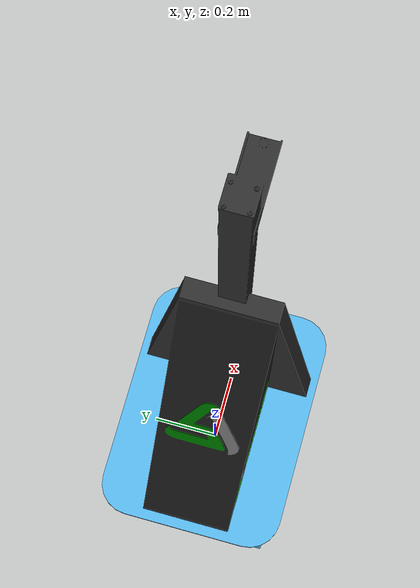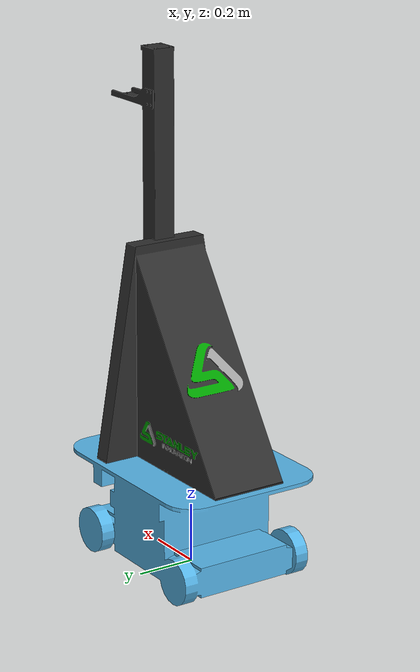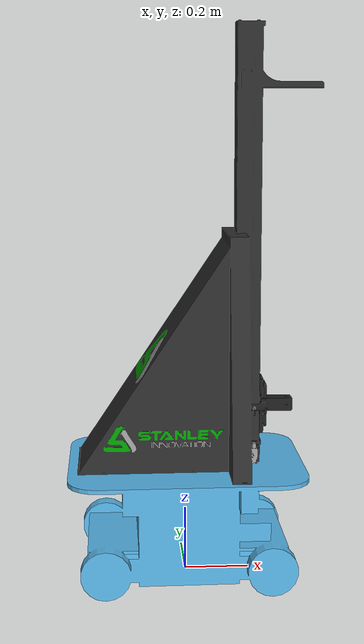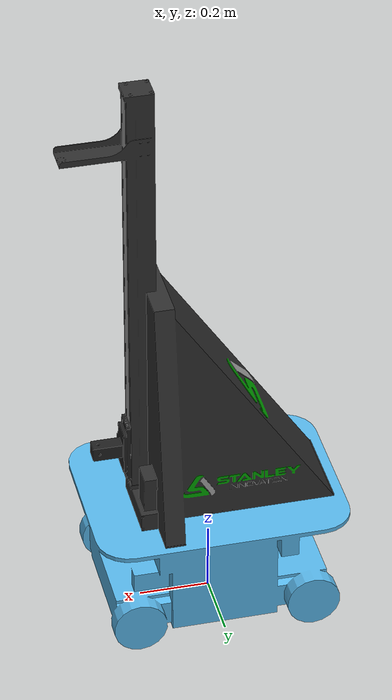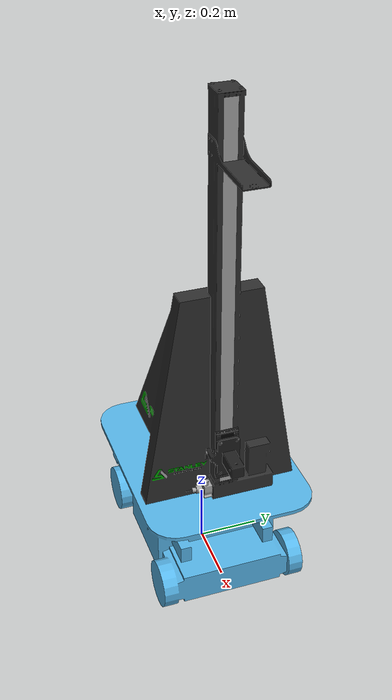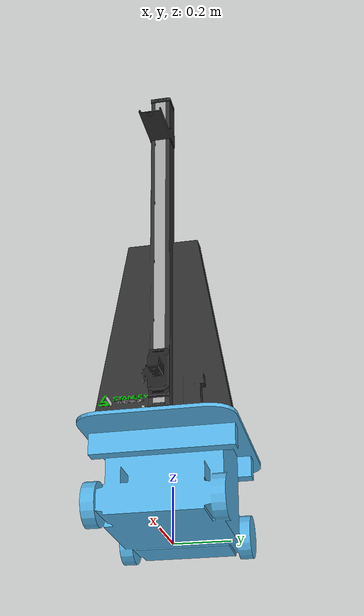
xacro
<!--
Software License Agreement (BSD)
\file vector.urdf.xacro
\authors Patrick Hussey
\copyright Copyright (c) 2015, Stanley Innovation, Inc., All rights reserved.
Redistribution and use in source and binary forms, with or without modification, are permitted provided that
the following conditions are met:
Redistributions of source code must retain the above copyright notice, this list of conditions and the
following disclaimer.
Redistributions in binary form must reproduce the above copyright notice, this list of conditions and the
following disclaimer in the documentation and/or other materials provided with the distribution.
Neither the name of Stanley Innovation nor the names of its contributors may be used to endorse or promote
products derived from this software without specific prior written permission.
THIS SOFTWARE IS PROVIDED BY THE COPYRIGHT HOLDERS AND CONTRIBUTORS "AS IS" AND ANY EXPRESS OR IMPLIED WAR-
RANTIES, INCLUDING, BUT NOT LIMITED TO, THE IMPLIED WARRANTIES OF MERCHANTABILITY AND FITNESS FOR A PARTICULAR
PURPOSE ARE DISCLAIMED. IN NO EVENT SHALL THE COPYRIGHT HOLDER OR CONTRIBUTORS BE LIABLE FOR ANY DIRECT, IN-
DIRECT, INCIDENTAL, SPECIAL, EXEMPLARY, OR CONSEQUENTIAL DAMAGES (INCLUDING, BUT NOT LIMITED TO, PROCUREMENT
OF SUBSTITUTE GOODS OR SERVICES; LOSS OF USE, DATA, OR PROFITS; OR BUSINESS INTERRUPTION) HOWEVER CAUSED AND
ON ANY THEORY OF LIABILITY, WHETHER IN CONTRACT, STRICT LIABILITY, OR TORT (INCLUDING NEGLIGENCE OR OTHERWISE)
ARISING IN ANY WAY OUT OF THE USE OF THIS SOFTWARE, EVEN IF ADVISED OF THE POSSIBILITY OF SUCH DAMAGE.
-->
<?xml version="1.0"?>
<robot name="vector" xmlns:xacro="http://ros.org/wiki/xacro">

    <!-- Included URDF/XACRO Files -->

    <xacro:include filename="$(find vector_description)/urdf/vector_components/vector_base.urdf.xacro" />
    <xacro:include filename="$(find vector_description)/urdf/linear_actuator/vector_linear_actuator.urdf.xacro" />
    <xacro:include filename="$(find vector_description)/urdf/accessories.urdf.xacro" />
    <xacro:include filename="$(find vector_description)/urdf/manipulation/jaco/jaco.urdf.xacro" />
    <xacro:include filename="$(find vector_description)/urdf/manipulation/robotiq/robotiq_85_gripper.urdf.xacro" />

    <xacro:property name="M_PI" value="3.14159"/>
    <xacro:if value="$(optenv VECTOR_USE_PLATFORM_ODOMETRY false)">
        <gazebo>
            <plugin name="gazebo_ros_control" filename="libgazebo_ros_control.so">
              <robotNamespace>/</robotNamespace>
            </plugin>
            <plugin name="object_controller" filename="libgazebo_ros_force_based_move.so">
                <commandTopic>/vector/cmd_vel</commandTopic>
                <odometryTopic>/vector/odometry/local_filtered</odometryTopic>
                <odometryFrame>odom</odometryFrame>
                <odometryRate>30.0</odometryRate>
                <robotBaseFrame>base_link</robotBaseFrame>
                <publishOdometryTf>1</publishOdometryTf>
                <yaw_velocity_p_gain>100.0</yaw_velocity_p_gain>
                <x_velocity_p_gain>10000.0</x_velocity_p_gain>
                <y_velocity_p_gain>10000.0</y_velocity_p_gain>
            </plugin>
        </gazebo>
    </xacro:if>

    <xacro:unless value="$(optenv VECTOR_USE_PLATFORM_ODOMETRY false)">
        <gazebo>
            <plugin name="gazebo_ros_control" filename="libgazebo_ros_control.so">
              <robotNamespace>/</robotNamespace>
            </plugin>
            <plugin name="object_controller" filename="libgazebo_ros_force_based_move.so">
                <commandTopic>/vector/cmd_vel</commandTopic>
                <odometryTopic>/vector/feedback/wheel_odometry</odometryTopic>
                <odometryFrame>odom</odometryFrame>
                <odometryRate>30.0</odometryRate>
                <robotBaseFrame>base_link</robotBaseFrame>
                <publishOdometryTf>0</publishOdometryTf>
                <yaw_velocity_p_gain>100.0</yaw_velocity_p_gain>
                <x_velocity_p_gain>10000.0</x_velocity_p_gain>
                <y_velocity_p_gain>10000.0</y_velocity_p_gain>
            </plugin>
        </gazebo>
    </xacro:unless>

    <xacro:vector_base name="base"/>

    <!--linear actuator-->
    <xacro:if value="$(optenv VECTOR_HAS_LINEAR_ACTUATOR true)">
        <xacro:vector_linear_actuator parent="base_chassis_link">
            <origin xyz="0.22806971 0 0.46024800" rpy="0 0 0" />
        </xacro:vector_linear_actuator>
    </xacro:if>

    <!-- Arms -->
    <xacro:if value="$(optenv VECTOR_HAS_KINOVA_ARM false)">
        <xacro:jaco_robot prefix="right_" parent="linear_actuator_link">
            <xacro:unless value="$(optenv VECTOR_HAS_TWO_KINOVA_ARMS false)">
                <origin xyz="0.06079866 -0.1319 0" rpy="${M_PI/2} 0 ${M_PI/2}"/>
            </xacro:unless>
            <xacro:if value="$(optenv VECTOR_HAS_TWO_KINOVA_ARMS false)">
                <origin xyz="0.06079866 -0.1319 0" rpy="${M_PI/2} 0 ${M_PI/2}"/>
            </xacro:if>
        </xacro:jaco_robot>

        <xacro:if value="$(optenv VECTOR_HAS_TWO_KINOVA_ARMS false)">
            <xacro:jaco_robot prefix="left_" parent="linear_actuator_link">
                <origin xyz="0.06079866 0.1319 0" rpy="${M_PI/2} 0 ${M_PI/2}"/>
            </xacro:jaco_robot>
        </xacro:if>

        <xacro:if value="$(optenv VECTOR_HAS_ROBOTIQ_GRIPPER false)">
            <xacro:robotiq_85_gripper prefix="right_" parent="right_ee_base" >
                <origin xyz="0 0 0" rpy="0 0 0"/>
            </xacro:robotiq_85_gripper>

            <xacro:if value="$(optenv VECTOR_HAS_TWO_ROBOTIQ_GRIPPERS false)">
                <xacro:robotiq_85_gripper prefix="left_" parent="left_ee_base" >
                    <origin xyz="0 0 0" rpy="0 0 0"/>
                </xacro:robotiq_85_gripper>
            </xacro:if>
        </xacro:if>
    </xacro:if>

    <!-- Setup any accessories defined in the environment -->
    <xacro:vector_accessories />

</robot>

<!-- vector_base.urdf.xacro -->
<robot name="vector_base" xmlns:xacro="http://ros.org/wiki/xacro">

    <!-- Wheel Mounting Positions and Properties-->
    <xacro:property name="wheel_radius" value="0.0762" />

	<xacro:macro name="vector_base" params="name">

        <!-- Base link is the center of the robot's chassis between the motors projected on the ground -->
        <link name="${name}_link"/>

        <gazebo reference="base_link">
            <mu1>0.0</mu1>
        </gazebo>

        <joint name="${name}_chassis_joint" type="fixed">
            <origin xyz="0 0 ${wheel_radius}" rpy="0 0 0" />
            <parent link="${name}_link" />
            <child link="${name}_chassis_link" />
        </joint>

        <link name="${name}_chassis_link">
			<inertial>
				<mass value="55.914402" />
				<origin xyz="0 0 0" />
				<inertia ixx="3.54"  ixy="0" ixz="0"
                         iyx="0"  iyy="3.71" iyz="0"
                         izx="0" izy="0" izz="2.53" />
			</inertial>
            <collision>
				<geometry>
					<mesh filename="package://vector_description/meshes/chassis_collision.STL" />
				</geometry>
			</collision>
			<visual>
				<origin xyz="0 0 0" rpy="0 0 0" />
				<geometry>
					<mesh filename="package://vector_description/meshes/vector_chassis.dae" />
				</geometry>
			</visual>
		</link>

        <gazebo reference="base_chassis_link">
            <mu1>0.0</mu1>
        </gazebo>

    </xacro:macro>

</robot>

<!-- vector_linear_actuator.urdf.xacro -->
<robot xmlns:xacro="http://ros.org/wiki/xacro" name="vector_linear_actuator">

	<xacro:macro name="vector_linear_actuator" params="parent *origin">

        <joint name="linear_actuator_joint" type="fixed">
            <xacro:insert_block name="origin" />
            <parent link="${parent}" />
            <child link="linear_actuator_fixed_link" />
        </joint>

	    <link name="linear_actuator_fixed_link">
			<visual>
				<geometry>
					<mesh filename="package://vector_description/meshes/linear_actuator/visual/linear_actuator.dae" />
				</geometry>
			</visual>
			<collision>
				<geometry>
					<mesh filename="package://vector_description/meshes/linear_actuator/collision/linear_actuator_collision.STL" />
				</geometry>
			</collision>
		    <inertial>
                <mass value="5.098044" />
                <origin xyz="0.0 0.0 0.5" rpy="0 0 0"/>
                <inertia ixx="0.02"  ixy="0.0"  ixz="1.0" iyy="-0.03"  iyz="-0.02" izz="0.0" />
		    </inertial>
		</link>

        <joint name="linear_joint" type="prismatic">
            <parent link="linear_actuator_fixed_link" />
            <child link = "linear_actuator_link" />
            <origin xyz="0 0 0" rpy="0 0 0" />
            <axis xyz="0 0 1" />
            <limit lower="0.0" upper="0.855" effort="1000" velocity="0.20"/>
            <dynamics damping="0.0" friction="0.0"/>
        </joint>

        <xacro:unless value="$(optenv VECTOR_HAS_TWO_KINOVA_ARMS false)">
            <link name="linear_actuator_link">
			    <visual>
				    <geometry>
					    <mesh filename="package://vector_description/meshes/linear_actuator/visual/linear_carraige.dae" />
				    </geometry>
			    </visual>
			    <collision>
				    <geometry>
					    <mesh filename="package://vector_description/meshes/linear_actuator/collision/linear_carraige_collision.STL" />
				    </geometry>
			    </collision>
		        <inertial>
                    <mass value="0.217" />
                    <origin xyz="0 -0.001 0" rpy="0 0 0"/>
                    <inertia ixx="0.0" ixy="0.0"  ixz="1.0"
                             iyy="0.0" iyz="0.0"
                             izz="0.0" />
		        </inertial>
		    </link>
		</xacro:unless>

        <xacro:if value="$(optenv VECTOR_HAS_TWO_KINOVA_ARMS false)">
            <link name="linear_actuator_link">
			    <visual>
				    <geometry>
					    <mesh filename="package://vector_description/meshes/linear_actuator/visual/linear_carraige_dual_front.dae" />
				    </geometry>
			    </visual>
			    <collision>
				    <geometry>
					    <mesh filename="package://vector_description/meshes/linear_actuator/collision/linear_carraige_dual_front.STL" />
				    </geometry>
			    </collision>
		        <inertial>
			        <mass value="2e-06"/>
			        <inertia ixx="1.1e-09" ixy="0" ixz="0" iyy="1.1e-09" iyz="0" izz="1.1e-09"/>
		        </inertial>
		    </link>
		</xacro:if>

        <transmission name="linear_trans">
            <type>transmission_interface/SimpleTransmission</type>
            <joint name="linear_joint">
                <hardwareInterface>PositionJointInterface</hardwareInterface>
            </joint>
            <actuator name="linear_motor">
                <mechanicalReduction>1</mechanicalReduction>
            </actuator>
        </transmission>

    </xacro:macro>

</robot>

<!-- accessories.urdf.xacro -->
<robot name="vector_accessories" xmlns:xacro="http://ros.org/wiki/xacro">
    <xacro:include filename="$(find vector_description)/urdf/sensors/sick_tim.urdf.xacro"/>
    <xacro:include filename="$(find vector_description)/urdf/sensors/hokuyo_ust20lx.urdf.xacro"/>
    <xacro:include filename="$(find vector_description)/urdf/sensors/pgr_flea3.urdf.xacro"/>
    <xacro:include filename="$(find vector_description)/urdf/sensors/pan_tilt_kinect_one.urdf.xacro" />

    <property name="M_PI" value="3.14159"/>

    <xacro:macro name="vector_accessories">

        <link name="sic_imu_frame"/>
        <joint name="sic_imu_joint" type="fixed">
            <origin xyz="0.07475 0.07136 0.24556" rpy="${M_PI} 0 0" />
            <parent link="$(optenv VECTOR_PARENT_LINK base_chassis_link)" />
            <child link="sic_imu_frame" />
        </joint>
        <gazebo>
            <plugin name="sic_imu_controller" filename="libhector_gazebo_ros_imu.so">
                <alwaysOn>1</alwaysOn>
                <updateRate>50.0</updateRate>
                <bodyName>sic_imu_frame</bodyName>
                <topicName>/vector/feedback/sic_imu</topicName>
                <accelDrift>0.0005 0.0005 0.0005</accelDrift>
                <accelGaussianNoise>0.0005 0.0005 0.0005</accelGaussianNoise>
                <rateDrift>0.0005 0.0005 0.0005</rateDrift>
                <rateGaussianNoise>0.00005 0.00005 0.00005 </rateGaussianNoise>
                <headingDrift>0.00005</headingDrift>
                <headingGaussianNoise>0.00005</headingGaussianNoise>
            </plugin>
        </gazebo>

        <!-- CH Robotics UM7 Link-->
        <xacro:if value="$(optenv VECTOR_HAS_EXT_IMU false)">
            <link name="ext_imu_frame"/>
            <joint name="ext_imu_joint" type="fixed">
                <origin xyz="$(optenv EXT_IMU_XYZ 0 0 0.30635)" rpy="$(optenv EXT_IMU_RPY 0 0 0)" />
                <parent link="$(optenv VECTOR_PARENT_LINK base_chassis_link)" />
                <child link="ext_imu_frame" />
            </joint>
            <gazebo>
                <plugin name="ext_imu_controller" filename="libhector_gazebo_ros_imu.so">
                    <alwaysOn>1</alwaysOn>
                    <updateRate>50.0</updateRate>
                    <bodyName>ext_imu_frame</bodyName>
                    <topicName>/vector/feedback/ext_imu</topicName>
	                <accelDrift>0.0005 0.0005 0.0005</accelDrift>
	                <accelGaussianNoise>0.0005 0.0005 0.0005</accelGaussianNoise>
	                <rateDrift>0.0005 0.0005 0.0005</rateDrift>
	                <rateGaussianNoise>0.00005 0.00005 0.00005 </rateGaussianNoise>
	                <headingDrift>0.00005</headingDrift>
	                <headingGaussianNoise>0.00005</headingGaussianNoise>
                </plugin>
            </gazebo>
        </xacro:if>

        <!-- RGBD Sensor -->
        <xacro:if value="$(optenv VECTOR_HAS_KINECT_PAN_TILT false)">
            <xacro:pan_tilt_kinect_one rgbd_prefix="kinect" parent="$(optenv KINECT_PAN_TILT_PARENT_LINK base_chassis_link)">
                <origin xyz="$(optenv KINECT_PAN_TILT_XYZ 0.16688476 0 0.99465201)" rpy="$(optenv KINECT_PAN_TILT_RPY 0 0 0)" />
            </xacro:pan_tilt_kinect_one>
        </xacro:if>

        <!-- First laser Sensor -->
        <xacro:if value="$(optenv VECTOR_HAS_ONE_2D_LASER false)">
            <!-- SICK TIM Sensor -->
            <xacro:if value="$(optenv VECTOR_LASER1_IS_SICK_TIM false)">
                <xacro:sick_tim laser_prefix="$(optenv LASER1_PREFIX base)" parent="$(optenv VECTOR_PARENT_LINK base_chassis_link)">
                    <origin xyz="$(optenv LASER1_XYZ 0.35 0 0.2)" rpy="$(optenv LASER1_RPY 3.14159 0 0)" />
                </xacro:sick_tim>
            </xacro:if>

            <xacro:if value="$(optenv VECTOR_LASER1_IS_HOKUYO false)">
                <xacro:hokuyo_ust20lx laser_prefix="$(optenv LASER1_PREFIX base)" parent="$(optenv VECTOR_PARENT_LINK base_chassis_link)">
                    <origin xyz="$(optenv LASER1_XYZ 0.35 0 0.2)" rpy="$(optenv LASER1_RPY 3.14159 0 0)" />
                </xacro:hokuyo_ust20lx>
            </xacro:if>
        </xacro:if>

        <!-- Second laser Sensor -->
        <xacro:if value="$(optenv VECTOR_HAS_SECOND_2D_LASER false)">
            <!-- SICK TIM Sensor -->
            <xacro:if value="$(optenv VECTOR_LASER2_IS_SICK_TIM false)">
                <xacro:sick_tim laser_prefix="$(optenv LASER2_PREFIX base)" parent="$(optenv VECTOR_PARENT_LINK base_chassis_link)">
                    <origin xyz="$(optenv LASER2_XYZ 0.35 0 0.2)" rpy="$(optenv LASER2_RPY 3.14159 0 0)" />
                </xacro:sick_tim>
            </xacro:if>

            <xacro:if value="$(optenv VECTOR_LASER2_IS_HOKUYO false)">
                <xacro:hokuyo_ust20lx laser_prefix="$(optenv LASER2_PREFIX base)" parent="$(optenv VECTOR_PARENT_LINK base_chassis_link)">
                    <origin xyz="$(optenv LASER2_XYZ 0.35 0 0.2)" rpy="$(optenv LASER2_RPY 3.14159 0 0)" />
                </xacro:hokuyo_ust20lx>
            </xacro:if>
        </xacro:if>

        <!-- PGR FLEA3 Sensor -->
        <xacro:if value="$(optenv VECTOR_HAS_FLEA3 false)">
            <xacro:pgr_flea3 camera_prefix="camera" parent="$(optenv VECTOR_PARENT_LINK base_chassis_link)"
                          image_format="R8G8B8" image_topic_name="image_raw"
                          camera_info_topic_name="camera_info" hfov="90" focal_length="317.772992"
                          hack_baseline="0" image_width="640" image_height="480">
                <origin xyz="$(optenv FLEA3_XYZ 0 0 0.32739)" rpy="$(optenv FLEA3_RPY 0 0 0)" />
            </xacro:pgr_flea3>
        </xacro:if>

    </xacro:macro>
</robot>
